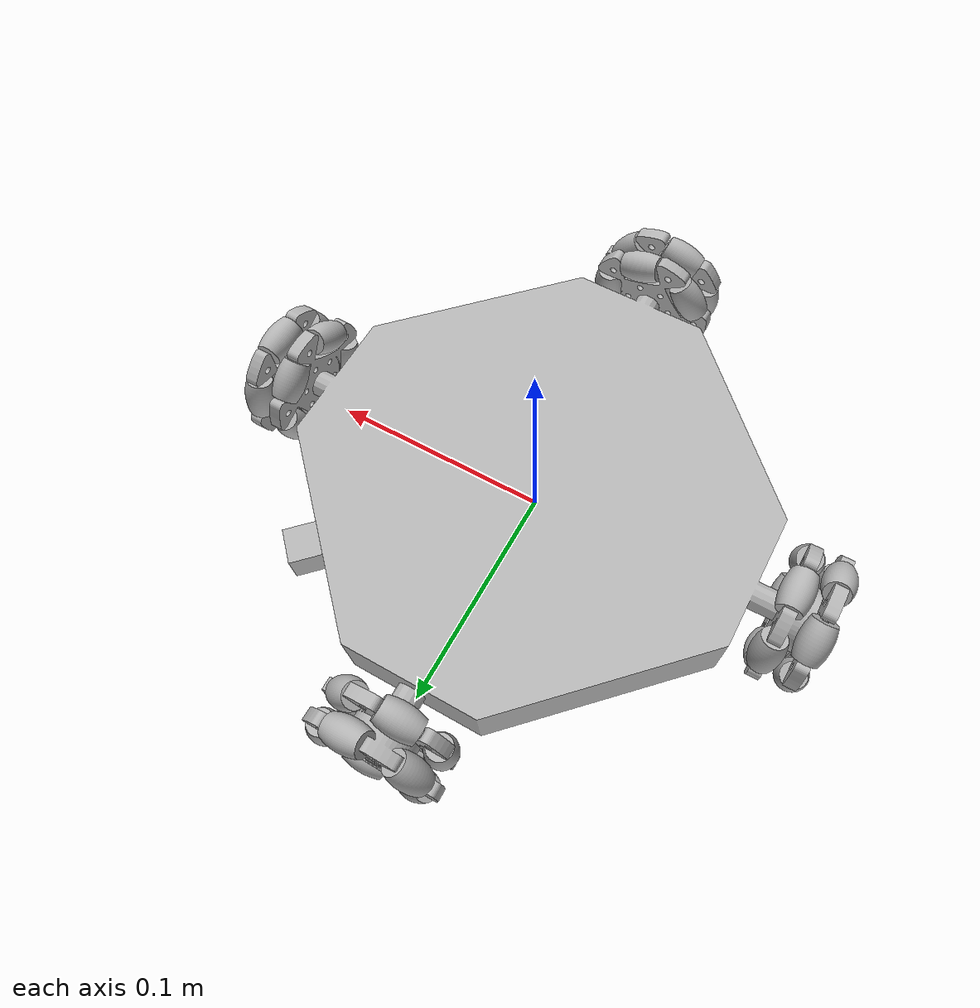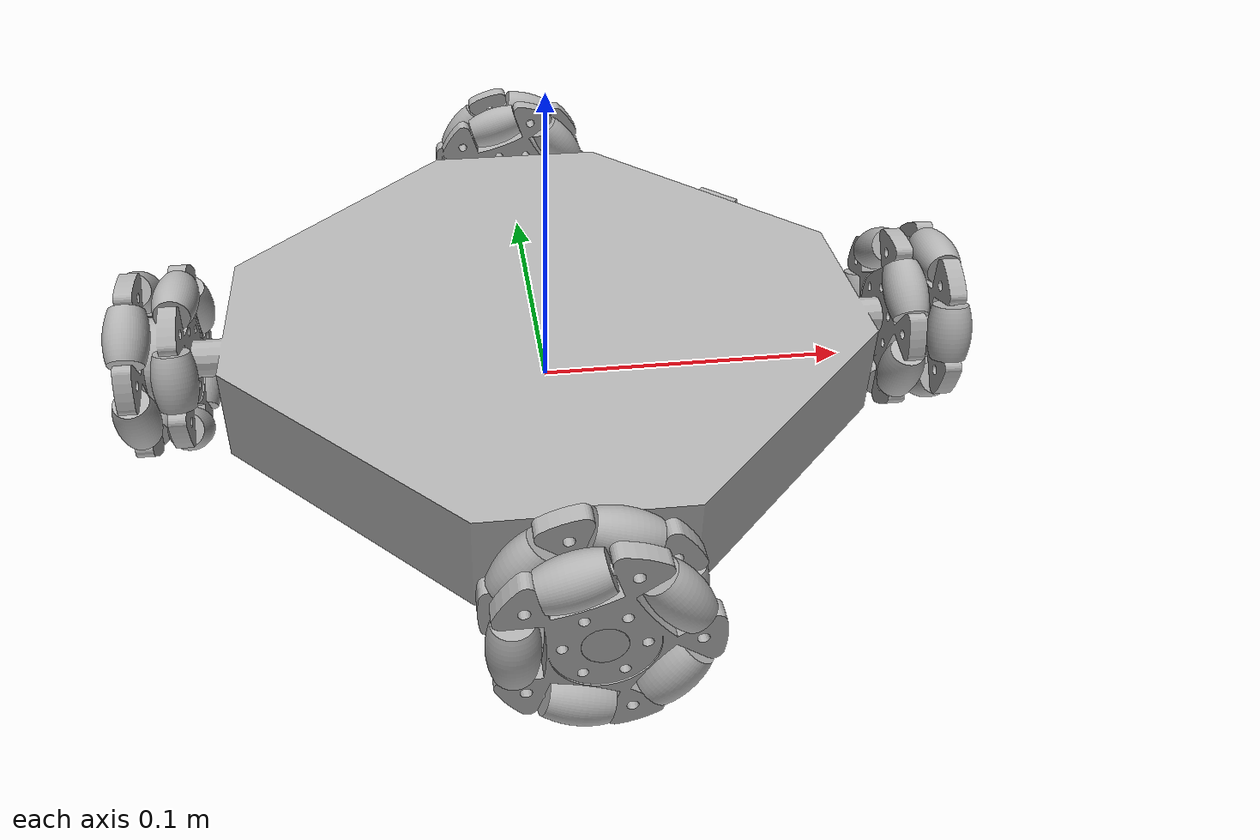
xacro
<?xml version="1.0" ?>
<robot name="omni_robot" xmlns:xacro="http://www.ros.org/wiki/xacro">

<xacro:include filename="$(find omni_robot_description)/urdf/materials.xacro" />
<xacro:include filename="$(find omni_robot_description)/urdf/omni_robot.trans" />
<xacro:include filename="$(find omni_robot_description)/urdf/omni_robot.gazebo" />
<link name="base_link">
  <inertial>
    <origin xyz="-0.00039055834309408623 1.8970697824213494e-17 0.013449503145948333" rpy="0 0 0"/>
    <mass value="7.526906469202046"/>
    <inertia ixx="0.018693" iyy="0.018693" izz="0.035927" ixy="-0.0" iyz="-0.0" ixz="3e-06"/>
  </inertial>
  <visual>
    <origin xyz="0 0 0" rpy="0 0 0"/>
    <geometry>
      <mesh filename="file://$(find omni_robot_description)/meshes/base_link.stl" scale="0.001 0.001 0.001"/>
    </geometry>
    <material name="silver"/>
  </visual>
  <collision>
    <origin xyz="0 0 0" rpy="0 0 0"/>
    <geometry>
      <mesh filename="file://$(find omni_robot_description)/meshes/base_link.stl" scale="0.001 0.001 0.001"/>
    </geometry>
  </collision>
</link>

<link name="rim_1_1">
  <inertial>
    <origin xyz="0.00899995139183217 3.200222004718161e-14 -3.8621820508226434e-07" rpy="0 0 0"/>
    <mass value="0.14023608587607866"/>
    <inertia ixx="5e-05" iyy="3e-05" izz="3e-05" ixy="-0.0" iyz="-0.0" ixz="-0.0"/>
  </inertial>
  <visual>
    <origin xyz="0.130374 0.0 -0.012426" rpy="0 0 0"/>
    <geometry>
      <mesh filename="file://$(find omni_robot_description)/meshes/rim_1_1.stl" scale="0.001 0.001 0.001"/>
    </geometry>
    <material name="silver"/>
  </visual>
  <collision>
    <origin xyz="0.130374 0.0 -0.012426" rpy="0 0 0"/>
    <geometry>
      <mesh filename="file://$(find omni_robot_description)/meshes/rim_1_1.stl" scale="0.001 0.001 0.001"/>
    </geometry>
  </collision>
</link>

<link name="rim_2_1">
  <inertial>
    <origin xyz="-4.860822816189726e-08 0.008999999999999966 -3.8621817657555346e-07" rpy="0 0 0"/>
    <mass value="0.1402360858760785"/>
    <inertia ixx="3e-05" iyy="5e-05" izz="3e-05" ixy="0.0" iyz="-0.0" ixz="0.0"/>
  </inertial>
  <visual>
    <origin xyz="0.000374 0.13 -0.012426" rpy="0 0 0"/>
    <geometry>
      <mesh filename="file://$(find omni_robot_description)/meshes/rim_2_1.stl" scale="0.001 0.001 0.001"/>
    </geometry>
    <material name="silver"/>
  </visual>
  <collision>
    <origin xyz="0.000374 0.13 -0.012426" rpy="0 0 0"/>
    <geometry>
      <mesh filename="file://$(find omni_robot_description)/meshes/rim_2_1.stl" scale="0.001 0.001 0.001"/>
    </geometry>
  </collision>
</link>

<link name="rim_3_1">
  <inertial>
    <origin xyz="-0.009000048608167707 3.2057903750967407e-14 -3.8621820497818093e-07" rpy="0 0 0"/>
    <mass value="0.14023608587607866"/>
    <inertia ixx="5e-05" iyy="3e-05" izz="3e-05" ixy="-0.0" iyz="-0.0" ixz="0.0"/>
  </inertial>
  <visual>
    <origin xyz="-0.129626 0.0 -0.012426" rpy="0 0 0"/>
    <geometry>
      <mesh filename="file://$(find omni_robot_description)/meshes/rim_3_1.stl" scale="0.001 0.001 0.001"/>
    </geometry>
    <material name="silver"/>
  </visual>
  <collision>
    <origin xyz="-0.129626 0.0 -0.012426" rpy="0 0 0"/>
    <geometry>
      <mesh filename="file://$(find omni_robot_description)/meshes/rim_3_1.stl" scale="0.001 0.001 0.001"/>
    </geometry>
  </collision>
</link>

<link name="rim_4_1">
  <inertial>
    <origin xyz="-4.860822806258434e-08 -0.009000000000000077 -3.8621817657555346e-07" rpy="0 0 0"/>
    <mass value="0.14023608587607855"/>
    <inertia ixx="3e-05" iyy="5e-05" izz="3e-05" ixy="0.0" iyz="-0.0" ixz="0.0"/>
  </inertial>
  <visual>
    <origin xyz="0.000374 -0.13 -0.012426" rpy="0 0 0"/>
    <geometry>
      <mesh filename="file://$(find omni_robot_description)/meshes/rim_4_1.stl" scale="0.001 0.001 0.001"/>
    </geometry>
    <material name="silver"/>
  </visual>
  <collision>
    <origin xyz="0.000374 -0.13 -0.012426" rpy="0 0 0"/>
    <geometry>
      <mesh filename="file://$(find omni_robot_description)/meshes/rim_4_1.stl" scale="0.001 0.001 0.001"/>
    </geometry>
  </collision>
</link>

<link name="roller_1_2_1">
  <inertial>
    <origin xyz="-4.8608167907415734e-08 -0.007152434060027909 0.005157276950545811" rpy="0 0 0"/>
    <mass value="0.017098974596301414"/>
    <inertia ixx="1e-06" iyy="0.0" izz="1e-06" ixy="0.0" iyz="0.0" ixz="-0.0"/>
  </inertial>
  <visual>
    <origin xyz="0.128124 -0.020392 -0.024892" rpy="0 0 0"/>
    <geometry>
      <mesh filename="file://$(find omni_robot_description)/meshes/roller_1_2_1.stl" scale="0.001 0.001 0.001"/>
    </geometry>
    <material name="silver"/>
  </visual>
  <collision>
    <origin xyz="0.128124 -0.020392 -0.024892" rpy="0 0 0"/>
    <geometry>
      <mesh filename="file://$(find omni_robot_description)/meshes/roller_1_2_1.stl" scale="0.001 0.001 0.001"/>
    </geometry>
  </collision>
</link>

<link name="roller_1_1_1">
  <inertial>
    <origin xyz="-4.860816793517131e-08 0.002695350571172799 0.00839604974399046" rpy="0 0 0"/>
    <mass value="0.017098974596301386"/>
    <inertia ixx="1e-06" iyy="1e-06" izz="0.0" ixy="-0.0" iyz="-0.0" ixz="0.0"/>
  </inertial>
  <visual>
    <origin xyz="0.128124 -0.018157 0.003116" rpy="0 0 0"/>
    <geometry>
      <mesh filename="file://$(find omni_robot_description)/meshes/roller_1_1_1.stl" scale="0.001 0.001 0.001"/>
    </geometry>
    <material name="silver"/>
  </visual>
  <collision>
    <origin xyz="0.128124 -0.018157 0.003116" rpy="0 0 0"/>
    <geometry>
      <mesh filename="file://$(find omni_robot_description)/meshes/roller_1_1_1.stl" scale="0.001 0.001 0.001"/>
    </geometry>
  </collision>
</link>

<link name="roller_1_5_1">
  <inertial>
    <origin xyz="-4.860816793517131e-08 0.008817895458340549 3.174916897563142e-05" rpy="0 0 0"/>
    <mass value="0.017098974596301345"/>
    <inertia ixx="1e-06" iyy="0.0" izz="1e-06" ixy="0.0" iyz="-0.0" ixz="0.0"/>
  </inertial>
  <visual>
    <origin xyz="0.128124 0.00917 0.009646" rpy="0 0 0"/>
    <geometry>
      <mesh filename="file://$(find omni_robot_description)/meshes/roller_1_5_1.stl" scale="0.001 0.001 0.001"/>
    </geometry>
    <material name="silver"/>
  </visual>
  <collision>
    <origin xyz="0.128124 0.00917 0.009646" rpy="0 0 0"/>
    <geometry>
      <mesh filename="file://$(find omni_robot_description)/meshes/roller_1_5_1.stl" scale="0.001 0.001 0.001"/>
    </geometry>
  </collision>
</link>

<link name="roller_1_3_1">
  <inertial>
    <origin xyz="-4.860816787966016e-08 0.0027550368544883505 -0.008377207618485365" rpy="0 0 0"/>
    <mass value="0.01709897459630136"/>
    <inertia ixx="1e-06" iyy="1e-06" izz="0.0" ixy="-0.0" iyz="0.0" ixz="-0.0"/>
  </inertial>
  <visual>
    <origin xyz="0.128124 0.023825 -0.014327" rpy="0 0 0"/>
    <geometry>
      <mesh filename="file://$(find omni_robot_description)/meshes/roller_1_3_1.stl" scale="0.001 0.001 0.001"/>
    </geometry>
    <material name="silver"/>
  </visual>
  <collision>
    <origin xyz="0.128124 0.023825 -0.014327" rpy="0 0 0"/>
    <geometry>
      <mesh filename="file://$(find omni_robot_description)/meshes/roller_1_3_1.stl" scale="0.001 0.001 0.001"/>
    </geometry>
  </collision>
</link>

<link name="roller_1_4_1">
  <inertial>
    <origin xyz="-4.860816810170476e-08 -0.0071158488239748425 -0.005208799335749234" rpy="0 0 0"/>
    <mass value="0.017098974596301365"/>
    <inertia ixx="1e-06" iyy="0.0" izz="1e-06" ixy="0.0" iyz="-0.0" ixz="-0.0"/>
  </inertial>
  <visual>
    <origin xyz="0.128124 0.005554 -0.035672" rpy="0 0 0"/>
    <geometry>
      <mesh filename="file://$(find omni_robot_description)/meshes/roller_1_4_1.stl" scale="0.001 0.001 0.001"/>
    </geometry>
    <material name="silver"/>
  </visual>
  <collision>
    <origin xyz="0.128124 0.005554 -0.035672" rpy="0 0 0"/>
    <geometry>
      <mesh filename="file://$(find omni_robot_description)/meshes/roller_1_4_1.stl" scale="0.001 0.001 0.001"/>
    </geometry>
  </collision>
</link>

<link name="roller_1_9_1">
  <inertial>
    <origin xyz="-4.8608168018438036e-08 0.007097166613708081 0.005234847529153874" rpy="0 0 0"/>
    <mass value="0.017098974596301372"/>
    <inertia ixx="1e-06" iyy="0.0" izz="1e-06" ixy="-0.0" iyz="-0.0" ixz="0.0"/>
  </inertial>
  <visual>
    <origin xyz="0.114624 -0.005568 0.010811" rpy="0 0 0"/>
    <geometry>
      <mesh filename="file://$(find omni_robot_description)/meshes/roller_1_9_1.stl" scale="0.001 0.001 0.001"/>
    </geometry>
    <material name="silver"/>
  </visual>
  <collision>
    <origin xyz="0.114624 -0.005568 0.010811" rpy="0 0 0"/>
    <geometry>
      <mesh filename="file://$(find omni_robot_description)/meshes/roller_1_9_1.stl" scale="0.001 0.001 0.001"/>
    </geometry>
  </collision>
</link>

<link name="roller_1_7_1">
  <inertial>
    <origin xyz="-4.860816785190458e-08 0.007171054620771836 -0.005131527156925909" rpy="0 0 0"/>
    <mass value="0.017098974596301407"/>
    <inertia ixx="1e-06" iyy="0.0" izz="1e-06" ixy="0.0" iyz="0.0" ixz="-0.0"/>
  </inertial>
  <visual>
    <origin xyz="0.114624 0.020378 5.1e-05" rpy="0 0 0"/>
    <geometry>
      <mesh filename="file://$(find omni_robot_description)/meshes/roller_1_7_1.stl" scale="0.001 0.001 0.001"/>
    </geometry>
    <material name="silver"/>
  </visual>
  <collision>
    <origin xyz="0.114624 0.020378 5.1e-05" rpy="0 0 0"/>
    <geometry>
      <mesh filename="file://$(find omni_robot_description)/meshes/roller_1_7_1.stl" scale="0.001 0.001 0.001"/>
    </geometry>
  </collision>
</link>

<link name="roller_1_6_1">
  <inertial>
    <origin xyz="-4.86081679490491e-08 -0.0026645077456347727 -0.00840604954430816" rpy="0 0 0"/>
    <mass value="0.017098974596301393"/>
    <inertia ixx="1e-06" iyy="1e-06" izz="0.0" ixy="0.0" iyz="-0.0" ixz="-0.0"/>
  </inertial>
  <visual>
    <origin xyz="0.114624 0.018163 -0.027951" rpy="0 0 0"/>
    <geometry>
      <mesh filename="file://$(find omni_robot_description)/meshes/roller_1_6_1.stl" scale="0.001 0.001 0.001"/>
    </geometry>
    <material name="silver"/>
  </visual>
  <collision>
    <origin xyz="0.114624 0.018163 -0.027951" rpy="0 0 0"/>
    <geometry>
      <mesh filename="file://$(find omni_robot_description)/meshes/roller_1_6_1.stl" scale="0.001 0.001 0.001"/>
    </geometry>
  </collision>
</link>

<link name="roller_1_10_1">
  <inertial>
    <origin xyz="-4.860816775476007e-08 -0.008818162308526037 -6.325323757874063e-05" rpy="0 0 0"/>
    <mass value="0.017098974596301414"/>
    <inertia ixx="1e-06" iyy="0.0" izz="1e-06" ixy="0.0" iyz="-0.0" ixz="0.0"/>
  </inertial>
  <visual>
    <origin xyz="0.114624 -0.009153 -0.034497" rpy="0 0 0"/>
    <geometry>
      <mesh filename="file://$(find omni_robot_description)/meshes/roller_1_10_1.stl" scale="0.001 0.001 0.001"/>
    </geometry>
    <material name="silver"/>
  </visual>
  <collision>
    <origin xyz="0.114624 -0.009153 -0.034497" rpy="0 0 0"/>
    <geometry>
      <mesh filename="file://$(find omni_robot_description)/meshes/roller_1_10_1.stl" scale="0.001 0.001 0.001"/>
    </geometry>
  </collision>
</link>

<link name="roller_1_8_1">
  <inertial>
    <origin xyz="-4.860816819884928e-08 -0.0027855511803199853 0.00836705131893639" rpy="0 0 0"/>
    <mass value="0.017098974596301397"/>
    <inertia ixx="1e-06" iyy="1e-06" izz="0.0" ixy="-0.0" iyz="0.0" ixz="0.0"/>
  </inertial>
  <visual>
    <origin xyz="0.114624 -0.02382 -0.010541" rpy="0 0 0"/>
    <geometry>
      <mesh filename="file://$(find omni_robot_description)/meshes/roller_1_8_1.stl" scale="0.001 0.001 0.001"/>
    </geometry>
    <material name="silver"/>
  </visual>
  <collision>
    <origin xyz="0.114624 -0.02382 -0.010541" rpy="0 0 0"/>
    <geometry>
      <mesh filename="file://$(find omni_robot_description)/meshes/roller_1_8_1.stl" scale="0.001 0.001 0.001"/>
    </geometry>
  </collision>
</link>

<link name="roller_2_6_1">
  <inertial>
    <origin xyz="0.008396270399259482 -1.1102230246251565e-16 -0.0026944538718184155" rpy="0 0 0"/>
    <mass value="0.017098974596301355"/>
    <inertia ixx="0.0" iyy="1e-06" izz="1e-06" ixy="-0.0" iyz="0.0" ixz="0.0"/>
  </inertial>
  <visual>
    <origin xyz="0.002446 0.12775 -0.036236" rpy="0 0 0"/>
    <geometry>
      <mesh filename="file://$(find omni_robot_description)/meshes/roller_2_6_1.stl" scale="0.001 0.001 0.001"/>
    </geometry>
    <material name="silver"/>
  </visual>
  <collision>
    <origin xyz="0.002446 0.12775 -0.036236" rpy="0 0 0"/>
    <geometry>
      <mesh filename="file://$(find omni_robot_description)/meshes/roller_2_6_1.stl" scale="0.001 0.001 0.001"/>
    </geometry>
  </collision>
</link>

<link name="roller_2_7_1">
  <inertial>
    <origin xyz="0.0051578283873547 -4.163336342344337e-16 0.007152580532084868" rpy="0 0 0"/>
    <mass value="0.017098974596301372"/>
    <inertia ixx="1e-06" iyy="1e-06" izz="0.0" ixy="0.0" iyz="0.0" ixz="-0.0"/>
  </inertial>
  <visual>
    <origin xyz="0.02366 0.12775 -0.017813" rpy="0 0 0"/>
    <geometry>
      <mesh filename="file://$(find omni_robot_description)/meshes/roller_2_7_1.stl" scale="0.001 0.001 0.001"/>
    </geometry>
    <material name="silver"/>
  </visual>
  <collision>
    <origin xyz="0.02366 0.12775 -0.017813" rpy="0 0 0"/>
    <geometry>
      <mesh filename="file://$(find omni_robot_description)/meshes/roller_2_7_1.stl" scale="0.001 0.001 0.001"/>
    </geometry>
  </collision>
</link>

<link name="roller_2_9_1">
  <inertial>
    <origin xyz="-0.005209163784600828 0.0 0.007115807104964769" rpy="0 0 0"/>
    <mass value="0.01709897459630136"/>
    <inertia ixx="1e-06" iyy="1e-06" izz="0.0" ixy="-0.0" iyz="-0.0" ixz="0.0"/>
  </inertial>
  <visual>
    <origin xyz="0.012693 0.12775 0.008056" rpy="0 0 0"/>
    <geometry>
      <mesh filename="file://$(find omni_robot_description)/meshes/roller_2_9_1.stl" scale="0.001 0.001 0.001"/>
    </geometry>
    <material name="silver"/>
  </visual>
  <collision>
    <origin xyz="0.012693 0.12775 0.008056" rpy="0 0 0"/>
    <geometry>
      <mesh filename="file://$(find omni_robot_description)/meshes/roller_2_9_1.stl" scale="0.001 0.001 0.001"/>
    </geometry>
  </collision>
</link>

<link name="roller_2_8_1">
  <inertial>
    <origin xyz="-0.008376896541448615 -3.3306690738754696e-16 -0.002754875781752755" rpy="0 0 0"/>
    <mass value="0.01709897459630136"/>
    <inertia ixx="0.0" iyy="1e-06" izz="1e-06" ixy="-0.0" iyz="0.0" ixz="-0.0"/>
  </inertial>
  <visual>
    <origin xyz="-0.015298 0.12775 0.00562" rpy="0 0 0"/>
    <geometry>
      <mesh filename="file://$(find omni_robot_description)/meshes/roller_2_8_1.stl" scale="0.001 0.001 0.001"/>
    </geometry>
    <material name="silver"/>
  </visual>
  <collision>
    <origin xyz="-0.015298 0.12775 0.00562" rpy="0 0 0"/>
    <geometry>
      <mesh filename="file://$(find omni_robot_description)/meshes/roller_2_8_1.stl" scale="0.001 0.001 0.001"/>
    </geometry>
  </collision>
</link>

<link name="roller_2_10_1">
  <inertial>
    <origin xyz="3.171849859690684e-05 -1.3877787807814457e-16 -0.008817989074200946" rpy="0 0 0"/>
    <mass value="0.017098974596301376"/>
    <inertia ixx="1e-06" iyy="1e-06" izz="0.0" ixy="0.0" iyz="-0.0" ixz="0.0"/>
  </inertial>
  <visual>
    <origin xyz="-0.021631 0.12775 -0.021754" rpy="0 0 0"/>
    <geometry>
      <mesh filename="file://$(find omni_robot_description)/meshes/roller_2_10_1.stl" scale="0.001 0.001 0.001"/>
    </geometry>
    <material name="silver"/>
  </visual>
  <collision>
    <origin xyz="-0.021631 0.12775 -0.021754" rpy="0 0 0"/>
    <geometry>
      <mesh filename="file://$(find omni_robot_description)/meshes/roller_2_10_1.stl" scale="0.001 0.001 0.001"/>
    </geometry>
  </collision>
</link>

<link name="roller_2_1_1">
  <inertial>
    <origin xyz="-0.008387238663895057 0.0 0.0027251473247736253" rpy="0 0 0"/>
    <mass value="0.017098974596301365"/>
    <inertia ixx="0.0" iyy="1e-06" izz="1e-06" ixy="-0.0" iyz="-0.0" ixz="0.0"/>
  </inertial>
  <visual>
    <origin xyz="-0.001682 0.11425 0.01138" rpy="0 0 0"/>
    <geometry>
      <mesh filename="file://$(find omni_robot_description)/meshes/roller_2_1_1.stl" scale="0.001 0.001 0.001"/>
    </geometry>
    <material name="silver"/>
  </visual>
  <collision>
    <origin xyz="-0.001682 0.11425 0.01138" rpy="0 0 0"/>
    <geometry>
      <mesh filename="file://$(find omni_robot_description)/meshes/roller_2_1_1.stl" scale="0.001 0.001 0.001"/>
    </geometry>
  </collision>
</link>

<link name="roller_2_2_1">
  <inertial>
    <origin xyz="-0.005183778939455836 1.3877787807814457e-17 -0.007133928161136459" rpy="0 0 0"/>
    <mass value="0.01709897459630136"/>
    <inertia ixx="1e-06" iyy="1e-06" izz="0.0" ixy="0.0" iyz="-0.0" ixz="-0.0"/>
  </inertial>
  <visual>
    <origin xyz="-0.022902 0.11425 -0.007024" rpy="0 0 0"/>
    <geometry>
      <mesh filename="file://$(find omni_robot_description)/meshes/roller_2_2_1.stl" scale="0.001 0.001 0.001"/>
    </geometry>
    <material name="silver"/>
  </visual>
  <collision>
    <origin xyz="-0.022902 0.11425 -0.007024" rpy="0 0 0"/>
    <geometry>
      <mesh filename="file://$(find omni_robot_description)/meshes/roller_2_2_1.stl" scale="0.001 0.001 0.001"/>
    </geometry>
  </collision>
</link>

<link name="roller_2_4_1">
  <inertial>
    <origin xyz="0.005183779036452337 -4.163336342344337e-17 -0.007134310749231279" rpy="0 0 0"/>
    <mass value="0.017098974596301407"/>
    <inertia ixx="1e-06" iyy="1e-06" izz="0.0" ixy="0.0" iyz="0.0" ixz="0.0"/>
  </inertial>
  <visual>
    <origin xyz="-0.011955 0.11425 -0.032893" rpy="0 0 0"/>
    <geometry>
      <mesh filename="file://$(find omni_robot_description)/meshes/roller_2_4_1.stl" scale="0.001 0.001 0.001"/>
    </geometry>
    <material name="silver"/>
  </visual>
  <collision>
    <origin xyz="-0.011955 0.11425 -0.032893" rpy="0 0 0"/>
    <geometry>
      <mesh filename="file://$(find omni_robot_description)/meshes/roller_2_4_1.stl" scale="0.001 0.001 0.001"/>
    </geometry>
  </collision>
</link>

<link name="roller_2_3_1">
  <inertial>
    <origin xyz="0.008387204446614421 -1.249000902703301e-16 0.002725449539203142" rpy="0 0 0"/>
    <mass value="0.017098974596301355"/>
    <inertia ixx="0.0" iyy="1e-06" izz="1e-06" ixy="0.0" iyz="0.0" ixz="-0.0"/>
  </inertial>
  <visual>
    <origin xyz="0.01603 0.11425 -0.030476" rpy="0 0 0"/>
    <geometry>
      <mesh filename="file://$(find omni_robot_description)/meshes/roller_2_3_1.stl" scale="0.001 0.001 0.001"/>
    </geometry>
    <material name="silver"/>
  </visual>
  <collision>
    <origin xyz="0.01603 0.11425 -0.030476" rpy="0 0 0"/>
    <geometry>
      <mesh filename="file://$(find omni_robot_description)/meshes/roller_2_3_1.stl" scale="0.001 0.001 0.001"/>
    </geometry>
  </collision>
</link>

<link name="roller_2_5_1">
  <inertial>
    <origin xyz="-2.0892055430446477e-07 -1.8041124150158794e-16 0.008818710955668774" rpy="0 0 0"/>
    <mass value="0.017098974596301397"/>
    <inertia ixx="1e-06" iyy="1e-06" izz="0.0" ixy="-0.0" iyz="0.0" ixz="0.0"/>
  </inertial>
  <visual>
    <origin xyz="0.022379 0.11425 -0.003114" rpy="0 0 0"/>
    <geometry>
      <mesh filename="file://$(find omni_robot_description)/meshes/roller_2_5_1.stl" scale="0.001 0.001 0.001"/>
    </geometry>
    <material name="silver"/>
  </visual>
  <collision>
    <origin xyz="0.022379 0.11425 -0.003114" rpy="0 0 0"/>
    <geometry>
      <mesh filename="file://$(find omni_robot_description)/meshes/roller_2_5_1.stl" scale="0.001 0.001 0.001"/>
    </geometry>
  </collision>
</link>

<link name="roller_3_10_1">
  <inertial>
    <origin xyz="-4.860816768537113e-08 0.00881860285605633 3.1380888620168024e-05" rpy="0 0 0"/>
    <mass value="0.017098974596301414"/>
    <inertia ixx="1e-06" iyy="0.0" izz="1e-06" ixy="0.0" iyz="-0.0" ixz="-0.0"/>
  </inertial>
  <visual>
    <origin xyz="-0.127376 0.009329 -0.034431" rpy="0 0 0"/>
    <geometry>
      <mesh filename="file://$(find omni_robot_description)/meshes/roller_3_10_1.stl" scale="0.001 0.001 0.001"/>
    </geometry>
    <material name="silver"/>
  </visual>
  <collision>
    <origin xyz="-0.127376 0.009329 -0.034431" rpy="0 0 0"/>
    <geometry>
      <mesh filename="file://$(find omni_robot_description)/meshes/roller_3_10_1.stl" scale="0.001 0.001 0.001"/>
    </geometry>
  </collision>
</link>

<link name="roller_3_6_1">
  <inertial>
    <origin xyz="-4.8608167463326524e-08 0.0026950676536738327 0.008396932789282779" rpy="0 0 0"/>
    <mass value="0.01709897459630135"/>
    <inertia ixx="1e-06" iyy="1e-06" izz="0.0" ixy="-0.0" iyz="-0.0" ixz="-0.0"/>
  </inertial>
  <visual>
    <origin xyz="-0.127376 0.023811 -0.010353" rpy="0 0 0"/>
    <geometry>
      <mesh filename="file://$(find omni_robot_description)/meshes/roller_3_6_1.stl" scale="0.001 0.001 0.001"/>
    </geometry>
    <material name="silver"/>
  </visual>
  <collision>
    <origin xyz="-0.127376 0.023811 -0.010353" rpy="0 0 0"/>
    <geometry>
      <mesh filename="file://$(find omni_robot_description)/meshes/roller_3_6_1.stl" scale="0.001 0.001 0.001"/>
    </geometry>
  </collision>
</link>

<link name="roller_3_7_1">
  <inertial>
    <origin xyz="-4.8608167463326524e-08 -0.00715296675022955 0.005157490777378008" rpy="0 0 0"/>
    <mass value="0.017098974596301404"/>
    <inertia ixx="1e-06" iyy="0.0" izz="1e-06" ixy="0.0" iyz="0.0" ixz="-0.0"/>
  </inertial>
  <visual>
    <origin xyz="-0.127376 0.005387 0.01086" rpy="0 0 0"/>
    <geometry>
      <mesh filename="file://$(find omni_robot_description)/meshes/roller_3_7_1.stl" scale="0.001 0.001 0.001"/>
    </geometry>
    <material name="silver"/>
  </visual>
  <collision>
    <origin xyz="-0.127376 0.005387 0.01086" rpy="0 0 0"/>
    <geometry>
      <mesh filename="file://$(find omni_robot_description)/meshes/roller_3_7_1.stl" scale="0.001 0.001 0.001"/>
    </geometry>
  </collision>
</link>

<link name="roller_3_9_1">
  <inertial>
    <origin xyz="-4.860816735230422e-08 -0.007115193323109333 -0.005208501394577663" rpy="0 0 0"/>
    <mass value="0.01709897459630137"/>
    <inertia ixx="1e-06" iyy="0.0" izz="1e-06" ixy="0.0" iyz="-0.0" ixz="-0.0"/>
  </inertial>
  <visual>
    <origin xyz="-0.127376 -0.020481 -0.000106" rpy="0 0 0"/>
    <geometry>
      <mesh filename="file://$(find omni_robot_description)/meshes/roller_3_9_1.stl" scale="0.001 0.001 0.001"/>
    </geometry>
    <material name="silver"/>
  </visual>
  <collision>
    <origin xyz="-0.127376 -0.020481 -0.000106" rpy="0 0 0"/>
    <geometry>
      <mesh filename="file://$(find omni_robot_description)/meshes/roller_3_9_1.stl" scale="0.001 0.001 0.001"/>
    </geometry>
  </collision>
</link>

<link name="roller_3_8_1">
  <inertial>
    <origin xyz="-4.860816718577077e-08 0.002755489563608139 -0.008377234151425432" rpy="0 0 0"/>
    <mass value="0.017098974596301397"/>
    <inertia ixx="1e-06" iyy="1e-06" izz="0.0" ixy="0.0" iyz="0.0" ixz="-0.0"/>
  </inertial>
  <visual>
    <origin xyz="-0.127376 -0.018045 -0.028098" rpy="0 0 0"/>
    <geometry>
      <mesh filename="file://$(find omni_robot_description)/meshes/roller_3_8_1.stl" scale="0.001 0.001 0.001"/>
    </geometry>
    <material name="silver"/>
  </visual>
  <collision>
    <origin xyz="-0.127376 -0.018045 -0.028098" rpy="0 0 0"/>
    <geometry>
      <mesh filename="file://$(find omni_robot_description)/meshes/roller_3_8_1.stl" scale="0.001 0.001 0.001"/>
    </geometry>
  </collision>
</link>

<link name="roller_3_5_1">
  <inertial>
    <origin xyz="-4.86081674910821e-08 -0.008818097173813473 4.534694689351665e-07" rpy="0 0 0"/>
    <mass value="0.017098974596301345"/>
    <inertia ixx="1e-06" iyy="0.0" izz="1e-06" ixy="0.0" iyz="-0.0" ixz="-0.0"/>
  </inertial>
  <visual>
    <origin xyz="-0.113876 -0.009311 0.00958" rpy="0 0 0"/>
    <geometry>
      <mesh filename="file://$(find omni_robot_description)/meshes/roller_3_5_1.stl" scale="0.001 0.001 0.001"/>
    </geometry>
    <material name="silver"/>
  </visual>
  <collision>
    <origin xyz="-0.113876 -0.009311 0.00958" rpy="0 0 0"/>
    <geometry>
      <mesh filename="file://$(find omni_robot_description)/meshes/roller_3_5_1.stl" scale="0.001 0.001 0.001"/>
    </geometry>
  </collision>
</link>

<link name="roller_3_1_1">
  <inertial>
    <origin xyz="-4.8608167463326524e-08 -0.002725533542918164 -0.008386576273871856" rpy="0 0 0"/>
    <mass value="0.017098974596301355"/>
    <inertia ixx="1e-06" iyy="1e-06" izz="0.0" ixy="0.0" iyz="-0.0" ixz="-0.0"/>
  </inertial>
  <visual>
    <origin xyz="-0.113876 -0.023806 -0.014481" rpy="0 0 0"/>
    <geometry>
      <mesh filename="file://$(find omni_robot_description)/meshes/roller_3_1_1.stl" scale="0.001 0.001 0.001"/>
    </geometry>
    <material name="silver"/>
  </visual>
  <collision>
    <origin xyz="-0.113876 -0.023806 -0.014481" rpy="0 0 0"/>
    <geometry>
      <mesh filename="file://$(find omni_robot_description)/meshes/roller_3_1_1.stl" scale="0.001 0.001 0.001"/>
    </geometry>
  </collision>
</link>

<link name="roller_3_2_1">
  <inertial>
    <origin xyz="-4.8608167713126704e-08 0.007134541942991779 -0.005183116549432602" rpy="0 0 0"/>
    <mass value="0.017098974596301428"/>
    <inertia ixx="1e-06" iyy="0.0" izz="1e-06" ixy="-0.0" iyz="0.0" ixz="-0.0"/>
  </inertial>
  <visual>
    <origin xyz="-0.113876 -0.005401 -0.035701" rpy="0 0 0"/>
    <geometry>
      <mesh filename="file://$(find omni_robot_description)/meshes/roller_3_2_1.stl" scale="0.001 0.001 0.001"/>
    </geometry>
    <material name="silver"/>
  </visual>
  <collision>
    <origin xyz="-0.113876 -0.005401 -0.035701" rpy="0 0 0"/>
    <geometry>
      <mesh filename="file://$(find omni_robot_description)/meshes/roller_3_2_1.stl" scale="0.001 0.001 0.001"/>
    </geometry>
  </collision>
</link>

<link name="roller_3_4_1">
  <inertial>
    <origin xyz="-4.860816735230422e-08 0.007133924531086751 0.005183441426475626" rpy="0 0 0"/>
    <mass value="0.01709897459630134"/>
    <inertia ixx="1e-06" iyy="0.0" izz="1e-06" ixy="-0.0" iyz="-0.0" ixz="-0.0"/>
  </inertial>
  <visual>
    <origin xyz="-0.113876 0.020467 -0.024755" rpy="0 0 0"/>
    <geometry>
      <mesh filename="file://$(find omni_robot_description)/meshes/roller_3_4_1.stl" scale="0.001 0.001 0.001"/>
    </geometry>
    <material name="silver"/>
  </visual>
  <collision>
    <origin xyz="-0.113876 0.020467 -0.024755" rpy="0 0 0"/>
    <geometry>
      <mesh filename="file://$(find omni_robot_description)/meshes/roller_3_4_1.stl" scale="0.001 0.001 0.001"/>
    </geometry>
  </collision>
</link>

<link name="roller_3_3_1">
  <inertial>
    <origin xyz="-4.860816761598219e-08 -0.0027248357573476795 0.008386866836637741" rpy="0 0 0"/>
    <mass value="0.017098974596301345"/>
    <inertia ixx="1e-06" iyy="1e-06" izz="0.0" ixy="0.0" iyz="0.0" ixz="0.0"/>
  </inertial>
  <visual>
    <origin xyz="-0.113876 0.018051 0.00323" rpy="0 0 0"/>
    <geometry>
      <mesh filename="file://$(find omni_robot_description)/meshes/roller_3_3_1.stl" scale="0.001 0.001 0.001"/>
    </geometry>
    <material name="silver"/>
  </visual>
  <collision>
    <origin xyz="-0.113876 0.018051 0.00323" rpy="0 0 0"/>
    <geometry>
      <mesh filename="file://$(find omni_robot_description)/meshes/roller_3_3_1.stl" scale="0.001 0.001 0.001"/>
    </geometry>
  </collision>
</link>

<link name="roller_4_3_1">
  <inertial>
    <origin xyz="-0.008376870008508713 2.7755575615628914e-17 -0.002755423072633059" rpy="0 0 0"/>
    <mass value="0.017098974596301338"/>
    <inertia ixx="0.0" iyy="1e-06" izz="1e-06" ixy="-0.0" iyz="0.0" ixz="-0.0"/>
  </inertial>
  <visual>
    <origin xyz="-0.001527 -0.12775 -0.036251" rpy="0 0 0"/>
    <geometry>
      <mesh filename="file://$(find omni_robot_description)/meshes/roller_4_3_1.stl" scale="0.001 0.001 0.001"/>
    </geometry>
    <material name="silver"/>
  </visual>
  <collision>
    <origin xyz="-0.001527 -0.12775 -0.036251" rpy="0 0 0"/>
    <geometry>
      <mesh filename="file://$(find omni_robot_description)/meshes/roller_4_3_1.stl" scale="0.001 0.001 0.001"/>
    </geometry>
  </collision>
</link>

<link name="roller_4_4_1">
  <inertial>
    <origin xyz="-0.0052084617257725264 -8.326672684688674e-17 0.0071154626058303645" rpy="0 0 0"/>
    <mass value="0.017098974596301348"/>
    <inertia ixx="1e-06" iyy="1e-06" izz="0.0" ixy="-0.0" iyz="0.0" ixz="0.0"/>
  </inertial>
  <visual>
    <origin xyz="-0.022872 -0.12775 -0.01798" rpy="0 0 0"/>
    <geometry>
      <mesh filename="file://$(find omni_robot_description)/meshes/roller_4_4_1.stl" scale="0.001 0.001 0.001"/>
    </geometry>
    <material name="silver"/>
  </visual>
  <collision>
    <origin xyz="-0.022872 -0.12775 -0.01798" rpy="0 0 0"/>
    <geometry>
      <mesh filename="file://$(find omni_robot_description)/meshes/roller_4_4_1.stl" scale="0.001 0.001 0.001"/>
    </geometry>
  </collision>
</link>

<link name="roller_4_2_1">
  <inertial>
    <origin xyz="0.005157614560522916 -1.1102230246251565e-16 0.007153047841883474" rpy="0 0 0"/>
    <mass value="0.017098974596301365"/>
    <inertia ixx="1e-06" iyy="1e-06" izz="0.0" ixy="-0.0" iyz="0.0" ixz="-0.0"/>
  </inertial>
  <visual>
    <origin xyz="-0.012092 -0.12775 0.007967" rpy="0 0 0"/>
    <geometry>
      <mesh filename="file://$(find omni_robot_description)/meshes/roller_4_2_1.stl" scale="0.001 0.001 0.001"/>
    </geometry>
    <material name="silver"/>
  </visual>
  <collision>
    <origin xyz="-0.012092 -0.12775 0.007967" rpy="0 0 0"/>
    <geometry>
      <mesh filename="file://$(find omni_robot_description)/meshes/roller_4_2_1.stl" scale="0.001 0.001 0.001"/>
    </geometry>
  </collision>
</link>

<link name="roller_4_1_1">
  <inertial>
    <origin xyz="0.008396387353967742 -1.1102230246251565e-16 -0.002694736789317579" rpy="0 0 0"/>
    <mass value="0.01709897459630136"/>
    <inertia ixx="0.0" iyy="1e-06" izz="1e-06" ixy="0.0" iyz="0.0" ixz="0.0"/>
  </inertial>
  <visual>
    <origin xyz="0.015916 -0.12775 0.005732" rpy="0 0 0"/>
    <geometry>
      <mesh filename="file://$(find omni_robot_description)/meshes/roller_4_1_1.stl" scale="0.001 0.001 0.001"/>
    </geometry>
    <material name="silver"/>
  </visual>
  <collision>
    <origin xyz="0.015916 -0.12775 0.005732" rpy="0 0 0"/>
    <geometry>
      <mesh filename="file://$(find omni_robot_description)/meshes/roller_4_1_1.stl" scale="0.001 0.001 0.001"/>
    </geometry>
  </collision>
</link>

<link name="roller_4_5_1">
  <inertial>
    <origin xyz="3.208677895260442e-05 -2.7755575615628914e-17 -0.008818281676485537" rpy="0 0 0"/>
    <mass value="0.01709897459630139"/>
    <inertia ixx="1e-06" iyy="1e-06" izz="0.0" ixy="-0.0" iyz="0.0" ixz="0.0"/>
  </inertial>
  <visual>
    <origin xyz="0.022446 -0.12775 -0.021596" rpy="0 0 0"/>
    <geometry>
      <mesh filename="file://$(find omni_robot_description)/meshes/roller_4_5_1.stl" scale="0.001 0.001 0.001"/>
    </geometry>
    <material name="silver"/>
  </visual>
  <collision>
    <origin xyz="0.022446 -0.12775 -0.021596" rpy="0 0 0"/>
    <geometry>
      <mesh filename="file://$(find omni_robot_description)/meshes/roller_4_5_1.stl" scale="0.001 0.001 0.001"/>
    </geometry>
  </collision>
</link>

<link name="roller_4_6_1">
  <inertial>
    <origin xyz="-0.008405711934331494 -1.249000902703301e-16 0.0026651215274901517" rpy="0 0 0"/>
    <mass value="0.01709897459630136"/>
    <inertia ixx="0.0" iyy="1e-06" izz="1e-06" ixy="-0.0" iyz="-0.0" ixz="0.0"/>
  </inertial>
  <visual>
    <origin xyz="-0.015151 -0.11425 -0.030588" rpy="0 0 0"/>
    <geometry>
      <mesh filename="file://$(find omni_robot_description)/meshes/roller_4_6_1.stl" scale="0.001 0.001 0.001"/>
    </geometry>
    <material name="silver"/>
  </visual>
  <collision>
    <origin xyz="-0.015151 -0.11425 -0.030588" rpy="0 0 0"/>
    <geometry>
      <mesh filename="file://$(find omni_robot_description)/meshes/roller_4_6_1.stl" scale="0.001 0.001 0.001"/>
    </geometry>
  </collision>
</link>

<link name="roller_4_10_1">
  <inertial>
    <origin xyz="-6.291562760180058e-05 -2.7755575615628914e-17 0.008817776090381637" rpy="0 0 0"/>
    <mass value="0.017098974596301393"/>
    <inertia ixx="1e-06" iyy="1e-06" izz="0.0" ixy="0.0" iyz="0.0" ixz="0.0"/>
  </inertial>
  <visual>
    <origin xyz="-0.021697 -0.11425 -0.003273" rpy="0 0 0"/>
    <geometry>
      <mesh filename="file://$(find omni_robot_description)/meshes/roller_4_10_1.stl" scale="0.001 0.001 0.001"/>
    </geometry>
    <material name="silver"/>
  </visual>
  <collision>
    <origin xyz="-0.021697 -0.11425 -0.003273" rpy="0 0 0"/>
    <geometry>
      <mesh filename="file://$(find omni_robot_description)/meshes/roller_4_10_1.stl" scale="0.001 0.001 0.001"/>
    </geometry>
  </collision>
</link>

<link name="roller_4_8_1">
  <inertial>
    <origin xyz="0.008367388928913566 9.71445146547012e-17 0.0027851649621753946" rpy="0 0 0"/>
    <mass value="0.017098974596301362"/>
    <inertia ixx="0.0" iyy="1e-06" izz="1e-06" ixy="0.0" iyz="-0.0" ixz="-0.0"/>
  </inertial>
  <visual>
    <origin xyz="0.002259 -0.11425 0.011394" rpy="0 0 0"/>
    <geometry>
      <mesh filename="file://$(find omni_robot_description)/meshes/roller_4_8_1.stl" scale="0.001 0.001 0.001"/>
    </geometry>
    <material name="silver"/>
  </visual>
  <collision>
    <origin xyz="0.002259 -0.11425 0.011394" rpy="0 0 0"/>
    <geometry>
      <mesh filename="file://$(find omni_robot_description)/meshes/roller_4_8_1.stl" scale="0.001 0.001 0.001"/>
    </geometry>
  </collision>
</link>

<link name="roller_4_9_1">
  <inertial>
    <origin xyz="0.0052341851391310215 -9.71445146547012e-17 -0.007096552831852921" rpy="0 0 0"/>
    <mass value="0.017098974596301397"/>
    <inertia ixx="1e-06" iyy="1e-06" izz="0.0" ixy="0.0" iyz="0.0" ixz="0.0"/>
  </inertial>
  <visual>
    <origin xyz="0.02361 -0.11425 -0.006857" rpy="0 0 0"/>
    <geometry>
      <mesh filename="file://$(find omni_robot_description)/meshes/roller_4_9_1.stl" scale="0.001 0.001 0.001"/>
    </geometry>
    <material name="silver"/>
  </visual>
  <collision>
    <origin xyz="0.02361 -0.11425 -0.006857" rpy="0 0 0"/>
    <geometry>
      <mesh filename="file://$(find omni_robot_description)/meshes/roller_4_9_1.stl" scale="0.001 0.001 0.001"/>
    </geometry>
  </collision>
</link>

<link name="roller_4_7_1">
  <inertial>
    <origin xyz="-0.005132189546949051 -9.71445146547012e-17 -0.007171440838916722" rpy="0 0 0"/>
    <mass value="0.0170989745963014"/>
    <inertia ixx="1e-06" iyy="1e-06" izz="0.0" ixy="0.0" iyz="0.0" ixz="-0.0"/>
  </inertial>
  <visual>
    <origin xyz="0.01285 -0.11425 -0.032804" rpy="0 0 0"/>
    <geometry>
      <mesh filename="file://$(find omni_robot_description)/meshes/roller_4_7_1.stl" scale="0.001 0.001 0.001"/>
    </geometry>
    <material name="silver"/>
  </visual>
  <collision>
    <origin xyz="0.01285 -0.11425 -0.032804" rpy="0 0 0"/>
    <geometry>
      <mesh filename="file://$(find omni_robot_description)/meshes/roller_4_7_1.stl" scale="0.001 0.001 0.001"/>
    </geometry>
  </collision>
</link>

<link name="lidar_link_1">
  <inertial>
    <origin xyz="-1.618646594692824e-07 7.154338888081818e-16 0.007499613781855534" rpy="0 0 0"/>
    <mass value="0.5363876756922872"/>
    <inertia ixx="0.000204" iyy="0.000204" izz="0.000389" ixy="-0.0" iyz="-0.0" ixz="0.0"/>
  </inertial>
  <visual>
    <origin xyz="0.000777 0.0 -0.047426" rpy="0 0 0"/>
    <geometry>
      <mesh filename="file://$(find omni_robot_description)/meshes/lidar_link_1.stl" scale="0.001 0.001 0.001"/>
    </geometry>
    <material name="silver"/>
  </visual>
  <collision>
    <origin xyz="0.000777 0.0 -0.047426" rpy="0 0 0"/>
    <geometry>
      <mesh filename="file://$(find omni_robot_description)/meshes/lidar_link_1.stl" scale="0.001 0.001 0.001"/>
    </geometry>
  </collision>
</link>

<link name="imu_link_1">
  <inertial>
    <origin xyz="-0.005303349467066731 0.00530330085889906 -3.8621814528981557e-07" rpy="0 0 0"/>
    <mass value="0.02633495842824316"/>
    <inertia ixx="1e-06" iyy="1e-06" izz="1e-06" ixy="-0.0" iyz="0.0" ixz="0.0"/>
  </inertial>
  <visual>
    <origin xyz="0.065374 -0.065 -0.012426" rpy="0 0 0"/>
    <geometry>
      <mesh filename="file://$(find omni_robot_description)/meshes/imu_link_1.stl" scale="0.001 0.001 0.001"/>
    </geometry>
    <material name="silver"/>
  </visual>
  <collision>
    <origin xyz="0.065374 -0.065 -0.012426" rpy="0 0 0"/>
    <geometry>
      <mesh filename="file://$(find omni_robot_description)/meshes/imu_link_1.stl" scale="0.001 0.001 0.001"/>
    </geometry>
  </collision>
</link>

<joint name="Revolute 1" type="continuous">
  <origin xyz="-0.130374 0.0 0.012426" rpy="0 0 0"/>
  <parent link="base_link"/>
  <child link="rim_1_1"/>
  <axis xyz="-1.0 -0.0 -0.0"/>
</joint>

<joint name="Revolute 2" type="continuous">
  <origin xyz="-0.000374 -0.13 0.012426" rpy="0 0 0"/>
  <parent link="base_link"/>
  <child link="rim_2_1"/>
  <axis xyz="0.0 -1.0 0.0"/>
</joint>

<joint name="Revolute 3" type="continuous">
  <origin xyz="0.129626 0.0 0.012426" rpy="0 0 0"/>
  <parent link="base_link"/>
  <child link="rim_3_1"/>
  <axis xyz="1.0 0.0 0.0"/>
</joint>

<joint name="Revolute 4" type="continuous">
  <origin xyz="-0.000374 0.13 0.012426" rpy="0 0 0"/>
  <parent link="base_link"/>
  <child link="rim_4_1"/>
  <axis xyz="-0.0 1.0 0.0"/>
</joint>

<joint name="Revolute 5" type="continuous">
  <origin xyz="0.00225 0.020392 0.012466" rpy="0 0 0"/>
  <parent link="rim_1_1"/>
  <child link="roller_1_2_1"/>
  <axis xyz="0.0 0.811123 -0.584876"/>
</joint>

<joint name="Revolute 6" type="continuous">
  <origin xyz="0.00225 0.018157 -0.015542" rpy="0 0 0"/>
  <parent link="rim_1_1"/>
  <child link="roller_1_1_1"/>
  <axis xyz="0.0 -0.305599 -0.95216"/>
</joint>

<joint name="Revolute 7" type="continuous">
  <origin xyz="0.00225 -0.00917 -0.022072" rpy="0 0 0"/>
  <parent link="rim_1_1"/>
  <child link="roller_1_5_1"/>
  <axis xyz="-0.0 -0.999994 -0.003591"/>
</joint>

<joint name="Revolute 8" type="continuous">
  <origin xyz="0.00225 -0.023825 0.001901" rpy="0 0 0"/>
  <parent link="rim_1_1"/>
  <child link="roller_1_3_1"/>
  <axis xyz="-0.0 -0.312431 0.949941"/>
</joint>

<joint name="Revolute 9" type="continuous">
  <origin xyz="0.00225 -0.005554 0.023246" rpy="0 0 0"/>
  <parent link="rim_1_1"/>
  <child link="roller_1_4_1"/>
  <axis xyz="0.0 0.806901 0.590687"/>
</joint>

<joint name="Revolute 10" type="continuous">
  <origin xyz="0.01575 0.005568 -0.023237" rpy="0 0 0"/>
  <parent link="rim_1_1"/>
  <child link="roller_1_9_1"/>
  <axis xyz="-0.0 -0.804774 -0.593581"/>
</joint>

<joint name="Revolute 11" type="continuous">
  <origin xyz="0.01575 -0.020378 -0.012477" rpy="0 0 0"/>
  <parent link="rim_1_1"/>
  <child link="roller_1_7_1"/>
  <axis xyz="-0.0 -0.813218 0.581959"/>
</joint>

<joint name="Revolute 12" type="continuous">
  <origin xyz="0.01575 -0.018163 0.015525" rpy="0 0 0"/>
  <parent link="rim_1_1"/>
  <child link="roller_1_6_1"/>
  <axis xyz="-0.0 0.302178 0.953252"/>
</joint>

<joint name="Revolute 13" type="continuous">
  <origin xyz="0.01575 0.009153 0.022071" rpy="0 0 0"/>
  <parent link="rim_1_1"/>
  <child link="roller_1_10_1"/>
  <axis xyz="0.0 0.999974 0.007183"/>
</joint>

<joint name="Revolute 14" type="continuous">
  <origin xyz="0.01575 0.02382 -0.001885" rpy="0 0 0"/>
  <parent link="rim_1_1"/>
  <child link="roller_1_8_1"/>
  <axis xyz="0.0 0.31584 -0.948812"/>
</joint>

<joint name="Revolute 15" type="continuous">
  <origin xyz="-0.002072 0.00225 0.02381" rpy="0 0 0"/>
  <parent link="rim_2_1"/>
  <child link="roller_2_6_1"/>
  <axis xyz="-0.95216 -0.0 0.305599"/>
</joint>

<joint name="Revolute 16" type="continuous">
  <origin xyz="-0.023286 0.00225 0.005387" rpy="0 0 0"/>
  <parent link="rim_2_1"/>
  <child link="roller_2_7_1"/>
  <axis xyz="-0.584876 -0.0 -0.811123"/>
</joint>

<joint name="Revolute 17" type="continuous">
  <origin xyz="-0.012319 0.00225 -0.020482" rpy="0 0 0"/>
  <parent link="rim_2_1"/>
  <child link="roller_2_9_1"/>
  <axis xyz="0.590687 0.0 -0.806901"/>
</joint>

<joint name="Revolute 18" type="continuous">
  <origin xyz="0.015672 0.00225 -0.018046" rpy="0 0 0"/>
  <parent link="rim_2_1"/>
  <child link="roller_2_8_1"/>
  <axis xyz="0.949941 0.0 0.312431"/>
</joint>

<joint name="Revolute 19" type="continuous">
  <origin xyz="0.022005 0.00225 0.009328" rpy="0 0 0"/>
  <parent link="rim_2_1"/>
  <child link="roller_2_10_1"/>
  <axis xyz="-0.003591 -0.0 0.999994"/>
</joint>

<joint name="Revolute 20" type="continuous">
  <origin xyz="0.002056 0.01575 -0.023806" rpy="0 0 0"/>
  <parent link="rim_2_1"/>
  <child link="roller_2_1_1"/>
  <axis xyz="0.951057 0.0 -0.309017"/>
</joint>

<joint name="Revolute 21" type="continuous">
  <origin xyz="0.023276 0.01575 -0.005402" rpy="0 0 0"/>
  <parent link="rim_2_1"/>
  <child link="roller_2_2_1"/>
  <axis xyz="0.587785 0.0 0.809017"/>
</joint>

<joint name="Revolute 22" type="continuous">
  <origin xyz="0.012329 0.01575 0.020467" rpy="0 0 0"/>
  <parent link="rim_2_1"/>
  <child link="roller_2_4_1"/>
  <axis xyz="-0.587785 -0.0 0.809017"/>
</joint>

<joint name="Revolute 23" type="continuous">
  <origin xyz="-0.015656 0.01575 0.01805" rpy="0 0 0"/>
  <parent link="rim_2_1"/>
  <child link="roller_2_3_1"/>
  <axis xyz="-0.951057 -0.0 -0.309017"/>
</joint>

<joint name="Revolute 24" type="continuous">
  <origin xyz="-0.022005 0.01575 -0.009312" rpy="0 0 0"/>
  <parent link="rim_2_1"/>
  <child link="roller_2_5_1"/>
  <axis xyz="0.0 0.0 -1.0"/>
</joint>

<joint name="Revolute 25" type="continuous">
  <origin xyz="-0.00225 -0.009329 0.022005" rpy="0 0 0"/>
  <parent link="rim_3_1"/>
  <child link="roller_3_10_1"/>
  <axis xyz="-0.0 -0.999994 -0.003591"/>
</joint>

<joint name="Revolute 26" type="continuous">
  <origin xyz="-0.00225 -0.023811 -0.002073" rpy="0 0 0"/>
  <parent link="rim_3_1"/>
  <child link="roller_3_6_1"/>
  <axis xyz="0.0 -0.305599 -0.95216"/>
</joint>

<joint name="Revolute 27" type="continuous">
  <origin xyz="-0.00225 -0.005387 -0.023286" rpy="0 0 0"/>
  <parent link="rim_3_1"/>
  <child link="roller_3_7_1"/>
  <axis xyz="0.0 0.811123 -0.584876"/>
</joint>

<joint name="Revolute 28" type="continuous">
  <origin xyz="-0.00225 0.020481 -0.01232" rpy="0 0 0"/>
  <parent link="rim_3_1"/>
  <child link="roller_3_9_1"/>
  <axis xyz="0.0 0.806901 0.590687"/>
</joint>

<joint name="Revolute 29" type="continuous">
  <origin xyz="-0.00225 0.018045 0.015672" rpy="0 0 0"/>
  <parent link="rim_3_1"/>
  <child link="roller_3_8_1"/>
  <axis xyz="-0.0 -0.312431 0.949941"/>
</joint>

<joint name="Revolute 30" type="continuous">
  <origin xyz="-0.01575 0.009311 -0.022006" rpy="0 0 0"/>
  <parent link="rim_3_1"/>
  <child link="roller_3_5_1"/>
  <axis xyz="0.0 1.0 0.0"/>
</joint>

<joint name="Revolute 31" type="continuous">
  <origin xyz="-0.01575 0.023806 0.002055" rpy="0 0 0"/>
  <parent link="rim_3_1"/>
  <child link="roller_3_1_1"/>
  <axis xyz="-0.0 0.309017 0.951057"/>
</joint>

<joint name="Revolute 32" type="continuous">
  <origin xyz="-0.01575 0.005401 0.023275" rpy="0 0 0"/>
  <parent link="rim_3_1"/>
  <child link="roller_3_2_1"/>
  <axis xyz="-0.0 -0.809017 0.587785"/>
</joint>

<joint name="Revolute 33" type="continuous">
  <origin xyz="-0.01575 -0.020467 0.012329" rpy="0 0 0"/>
  <parent link="rim_3_1"/>
  <child link="roller_3_4_1"/>
  <axis xyz="-0.0 -0.809017 -0.587785"/>
</joint>

<joint name="Revolute 34" type="continuous">
  <origin xyz="-0.01575 -0.018051 -0.015656" rpy="0 0 0"/>
  <parent link="rim_3_1"/>
  <child link="roller_3_3_1"/>
  <axis xyz="0.0 0.309017 -0.951057"/>
</joint>

<joint name="Revolute 35" type="continuous">
  <origin xyz="0.001901 -0.00225 0.023825" rpy="0 0 0"/>
  <parent link="rim_4_1"/>
  <child link="roller_4_3_1"/>
  <axis xyz="0.949941 0.0 0.312431"/>
</joint>

<joint name="Revolute 36" type="continuous">
  <origin xyz="0.023246 -0.00225 0.005554" rpy="0 0 0"/>
  <parent link="rim_4_1"/>
  <child link="roller_4_4_1"/>
  <axis xyz="0.590687 0.0 -0.806901"/>
</joint>

<joint name="Revolute 37" type="continuous">
  <origin xyz="0.012466 -0.00225 -0.020393" rpy="0 0 0"/>
  <parent link="rim_4_1"/>
  <child link="roller_4_2_1"/>
  <axis xyz="-0.584876 -0.0 -0.811123"/>
</joint>

<joint name="Revolute 38" type="continuous">
  <origin xyz="-0.015542 -0.00225 -0.018158" rpy="0 0 0"/>
  <parent link="rim_4_1"/>
  <child link="roller_4_1_1"/>
  <axis xyz="-0.95216 -0.0 0.305599"/>
</joint>

<joint name="Revolute 39" type="continuous">
  <origin xyz="-0.022072 -0.00225 0.00917" rpy="0 0 0"/>
  <parent link="rim_4_1"/>
  <child link="roller_4_5_1"/>
  <axis xyz="-0.003591 -0.0 0.999994"/>
</joint>

<joint name="Revolute 40" type="continuous">
  <origin xyz="0.015525 -0.01575 0.018162" rpy="0 0 0"/>
  <parent link="rim_4_1"/>
  <child link="roller_4_6_1"/>
  <axis xyz="0.953252 0.0 -0.302178"/>
</joint>

<joint name="Revolute 41" type="continuous">
  <origin xyz="0.022071 -0.01575 -0.009153" rpy="0 0 0"/>
  <parent link="rim_4_1"/>
  <child link="roller_4_10_1"/>
  <axis xyz="0.007183 0.0 -0.999974"/>
</joint>

<joint name="Revolute 42" type="continuous">
  <origin xyz="-0.001885 -0.01575 -0.02382" rpy="0 0 0"/>
  <parent link="rim_4_1"/>
  <child link="roller_4_8_1"/>
  <axis xyz="-0.948812 -0.0 -0.31584"/>
</joint>

<joint name="Revolute 43" type="continuous">
  <origin xyz="-0.023236 -0.01575 -0.005569" rpy="0 0 0"/>
  <parent link="rim_4_1"/>
  <child link="roller_4_9_1"/>
  <axis xyz="-0.593581 -0.0 0.804774"/>
</joint>

<joint name="Revolute 44" type="continuous">
  <origin xyz="-0.012476 -0.01575 0.020378" rpy="0 0 0"/>
  <parent link="rim_4_1"/>
  <child link="roller_4_7_1"/>
  <axis xyz="0.581959 0.0 0.813218"/>
</joint>

<joint name="Rigid 45" type="fixed">
  <origin xyz="-0.000777 0.0 0.047426" rpy="0 0 0"/>
  <parent link="base_link"/>
  <child link="lidar_link_1"/>
</joint>

<joint name="Rigid 46" type="fixed">
  <origin xyz="-0.065374 0.065 0.012426" rpy="0 0 0"/>
  <parent link="base_link"/>
  <child link="imu_link_1"/>
</joint>

</robot>

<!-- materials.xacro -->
<robot name="omni_robot" xmlns:xacro="http://www.ros.org/wiki/xacro" >

<material name="silver">
  <color rgba="0.700 0.700 0.700 1.000"/>
</material>

</robot>

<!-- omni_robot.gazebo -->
<robot name="omni_robot" xmlns:xacro="http://www.ros.org/wiki/xacro" >

<xacro:property name="body_color" value="Gazebo/Silver" />

<gazebo>
  <plugin name="control" filename="libgazebo_ros_control.so"/>
</gazebo>
<gazebo reference="base_link">
  <material>${body_color}</material>
  <mu1>0.2</mu1>
  <mu2>0.2</mu2>
  <self_collide>true</self_collide>
  <gravity>true</gravity>
</gazebo>

<gazebo reference="rim_1_1">
  <material>${body_color}</material>
  <mu1>0.2</mu1>
  <mu2>0.2</mu2>
  <self_collide>true</self_collide>
</gazebo>

<gazebo reference="rim_2_1">
  <material>${body_color}</material>
  <mu1>0.2</mu1>
  <mu2>0.2</mu2>
  <self_collide>true</self_collide>
</gazebo>

<gazebo reference="rim_3_1">
  <material>${body_color}</material>
  <mu1>0.2</mu1>
  <mu2>0.2</mu2>
  <self_collide>true</self_collide>
</gazebo>

<gazebo reference="rim_4_1">
  <material>${body_color}</material>
  <mu1>0.2</mu1>
  <mu2>0.2</mu2>
  <self_collide>true</self_collide>
</gazebo>

<gazebo reference="roller_1_2_1">
  <material>${body_color}</material>
  <mu1>0.2</mu1>
  <mu2>0.2</mu2>
  <self_collide>true</self_collide>
</gazebo>

<gazebo reference="roller_1_1_1">
  <material>${body_color}</material>
  <mu1>0.2</mu1>
  <mu2>0.2</mu2>
  <self_collide>true</self_collide>
</gazebo>

<gazebo reference="roller_1_5_1">
  <material>${body_color}</material>
  <mu1>0.2</mu1>
  <mu2>0.2</mu2>
  <self_collide>true</self_collide>
</gazebo>

<gazebo reference="roller_1_3_1">
  <material>${body_color}</material>
  <mu1>0.2</mu1>
  <mu2>0.2</mu2>
  <self_collide>true</self_collide>
</gazebo>

<gazebo reference="roller_1_4_1">
  <material>${body_color}</material>
  <mu1>0.2</mu1>
  <mu2>0.2</mu2>
  <self_collide>true</self_collide>
</gazebo>

<gazebo reference="roller_1_9_1">
  <material>${body_color}</material>
  <mu1>0.2</mu1>
  <mu2>0.2</mu2>
  <self_collide>true</self_collide>
</gazebo>

<gazebo reference="roller_1_7_1">
  <material>${body_color}</material>
  <mu1>0.2</mu1>
  <mu2>0.2</mu2>
  <self_collide>true</self_collide>
</gazebo>

<gazebo reference="roller_1_6_1">
  <material>${body_color}</material>
  <mu1>0.2</mu1>
  <mu2>0.2</mu2>
  <self_collide>true</self_collide>
</gazebo>

<gazebo reference="roller_1_10_1">
  <material>${body_color}</material>
  <mu1>0.2</mu1>
  <mu2>0.2</mu2>
  <self_collide>true</self_collide>
</gazebo>

<gazebo reference="roller_1_8_1">
  <material>${body_color}</material>
  <mu1>0.2</mu1>
  <mu2>0.2</mu2>
  <self_collide>true</self_collide>
</gazebo>

<gazebo reference="roller_2_6_1">
  <material>${body_color}</material>
  <mu1>0.2</mu1>
  <mu2>0.2</mu2>
  <self_collide>true</self_collide>
</gazebo>

<gazebo reference="roller_2_7_1">
  <material>${body_color}</material>
  <mu1>0.2</mu1>
  <mu2>0.2</mu2>
  <self_collide>true</self_collide>
</gazebo>

<gazebo reference="roller_2_9_1">
  <material>${body_color}</material>
  <mu1>0.2</mu1>
  <mu2>0.2</mu2>
  <self_collide>true</self_collide>
</gazebo>

<gazebo reference="roller_2_8_1">
  <material>${body_color}</material>
  <mu1>0.2</mu1>
  <mu2>0.2</mu2>
  <self_collide>true</self_collide>
</gazebo>

<gazebo reference="roller_2_10_1">
  <material>${body_color}</material>
  <mu1>0.2</mu1>
  <mu2>0.2</mu2>
  <self_collide>true</self_collide>
</gazebo>

<gazebo reference="roller_2_1_1">
  <material>${body_color}</material>
  <mu1>0.2</mu1>
  <mu2>0.2</mu2>
  <self_collide>true</self_collide>
</gazebo>

<gazebo reference="roller_2_2_1">
  <material>${body_color}</material>
  <mu1>0.2</mu1>
  <mu2>0.2</mu2>
  <self_collide>true</self_collide>
</gazebo>

<gazebo reference="roller_2_4_1">
  <material>${body_color}</material>
  <mu1>0.2</mu1>
  <mu2>0.2</mu2>
  <self_collide>true</self_collide>
</gazebo>

<gazebo reference="roller_2_3_1">
  <material>${body_color}</material>
  <mu1>0.2</mu1>
  <mu2>0.2</mu2>
  <self_collide>true</self_collide>
</gazebo>

<gazebo reference="roller_2_5_1">
  <material>${body_color}</material>
  <mu1>0.2</mu1>
  <mu2>0.2</mu2>
  <self_collide>true</self_collide>
</gazebo>

<gazebo reference="roller_3_10_1">
  <material>${body_color}</material>
  <mu1>0.2</mu1>
  <mu2>0.2</mu2>
  <self_collide>true</self_collide>
</gazebo>

<gazebo reference="roller_3_6_1">
  <material>${body_color}</material>
  <mu1>0.2</mu1>
  <mu2>0.2</mu2>
  <self_collide>true</self_collide>
</gazebo>

<gazebo reference="roller_3_7_1">
  <material>${body_color}</material>
  <mu1>0.2</mu1>
  <mu2>0.2</mu2>
  <self_collide>true</self_collide>
</gazebo>

<gazebo reference="roller_3_9_1">
  <material>${body_color}</material>
  <mu1>0.2</mu1>
  <mu2>0.2</mu2>
  <self_collide>true</self_collide>
</gazebo>

<gazebo reference="roller_3_8_1">
  <material>${body_color}</material>
  <mu1>0.2</mu1>
  <mu2>0.2</mu2>
  <self_collide>true</self_collide>
</gazebo>

<gazebo reference="roller_3_5_1">
  <material>${body_color}</material>
  <mu1>0.2</mu1>
  <mu2>0.2</mu2>
  <self_collide>true</self_collide>
</gazebo>

<gazebo reference="roller_3_1_1">
  <material>${body_color}</material>
  <mu1>0.2</mu1>
  <mu2>0.2</mu2>
  <self_collide>true</self_collide>
</gazebo>

<gazebo reference="roller_3_2_1">
  <material>${body_color}</material>
  <mu1>0.2</mu1>
  <mu2>0.2</mu2>
  <self_collide>true</self_collide>
</gazebo>

<gazebo reference="roller_3_4_1">
  <material>${body_color}</material>
  <mu1>0.2</mu1>
  <mu2>0.2</mu2>
  <self_collide>true</self_collide>
</gazebo>

<gazebo reference="roller_3_3_1">
  <material>${body_color}</material>
  <mu1>0.2</mu1>
  <mu2>0.2</mu2>
  <self_collide>true</self_collide>
</gazebo>

<gazebo reference="roller_4_3_1">
  <material>${body_color}</material>
  <mu1>0.2</mu1>
  <mu2>0.2</mu2>
  <self_collide>true</self_collide>
</gazebo>

<gazebo reference="roller_4_4_1">
  <material>${body_color}</material>
  <mu1>0.2</mu1>
  <mu2>0.2</mu2>
  <self_collide>true</self_collide>
</gazebo>

<gazebo reference="roller_4_2_1">
  <material>${body_color}</material>
  <mu1>0.2</mu1>
  <mu2>0.2</mu2>
  <self_collide>true</self_collide>
</gazebo>

<gazebo reference="roller_4_1_1">
  <material>${body_color}</material>
  <mu1>0.2</mu1>
  <mu2>0.2</mu2>
  <self_collide>true</self_collide>
</gazebo>

<gazebo reference="roller_4_5_1">
  <material>${body_color}</material>
  <mu1>0.2</mu1>
  <mu2>0.2</mu2>
  <self_collide>true</self_collide>
</gazebo>

<gazebo reference="roller_4_6_1">
  <material>${body_color}</material>
  <mu1>0.2</mu1>
  <mu2>0.2</mu2>
  <self_collide>true</self_collide>
</gazebo>

<gazebo reference="roller_4_10_1">
  <material>${body_color}</material>
  <mu1>0.2</mu1>
  <mu2>0.2</mu2>
  <self_collide>true</self_collide>
</gazebo>

<gazebo reference="roller_4_8_1">
  <material>${body_color}</material>
  <mu1>0.2</mu1>
  <mu2>0.2</mu2>
  <self_collide>true</self_collide>
</gazebo>

<gazebo reference="roller_4_9_1">
  <material>${body_color}</material>
  <mu1>0.2</mu1>
  <mu2>0.2</mu2>
  <self_collide>true</self_collide>
</gazebo>

<gazebo reference="roller_4_7_1">
  <material>${body_color}</material>
  <mu1>0.2</mu1>
  <mu2>0.2</mu2>
  <self_collide>true</self_collide>
</gazebo>

<gazebo reference="lidar_link_1">
  <material>${body_color}</material>
  <mu1>0.2</mu1>
  <mu2>0.2</mu2>
  <self_collide>true</self_collide>
</gazebo>

<gazebo reference="imu_link_1">
  <material>${body_color}</material>
  <mu1>0.2</mu1>
  <mu2>0.2</mu2>
  <self_collide>true</self_collide>
</gazebo>

</robot>
